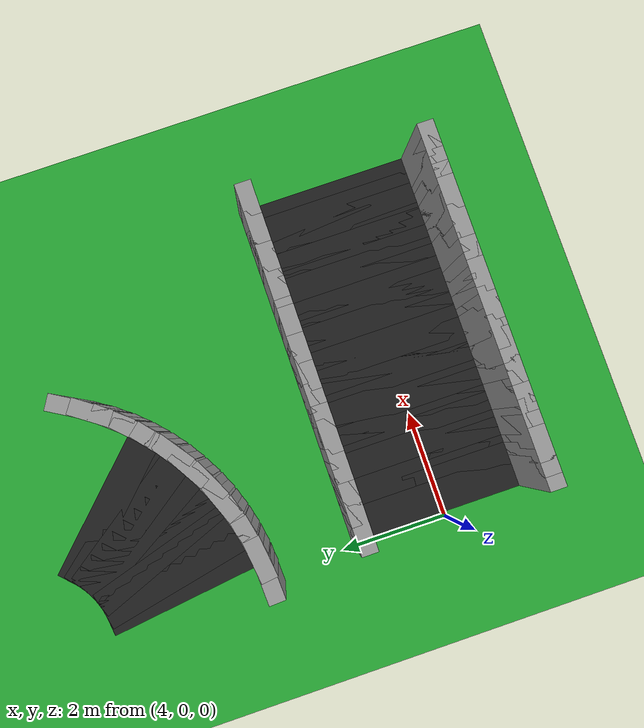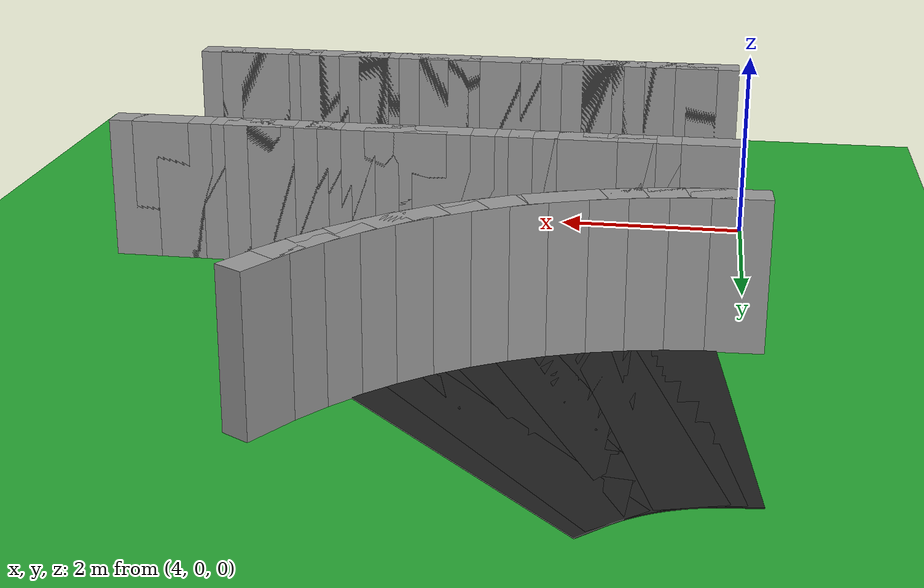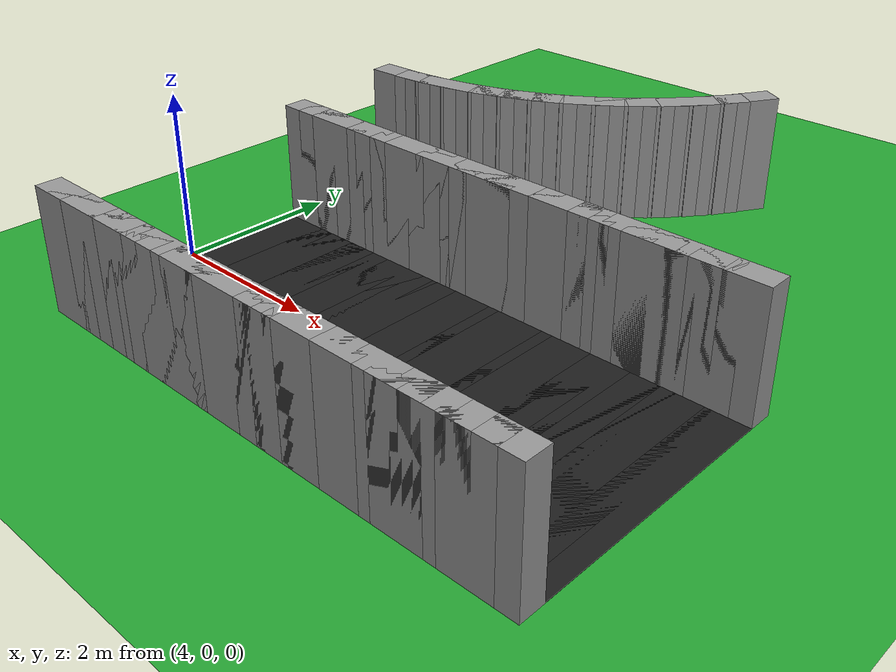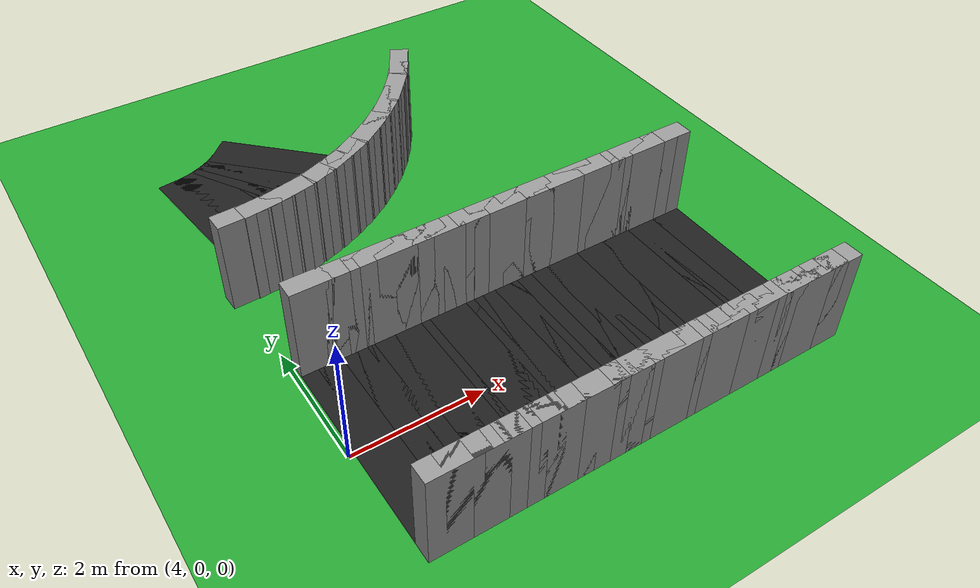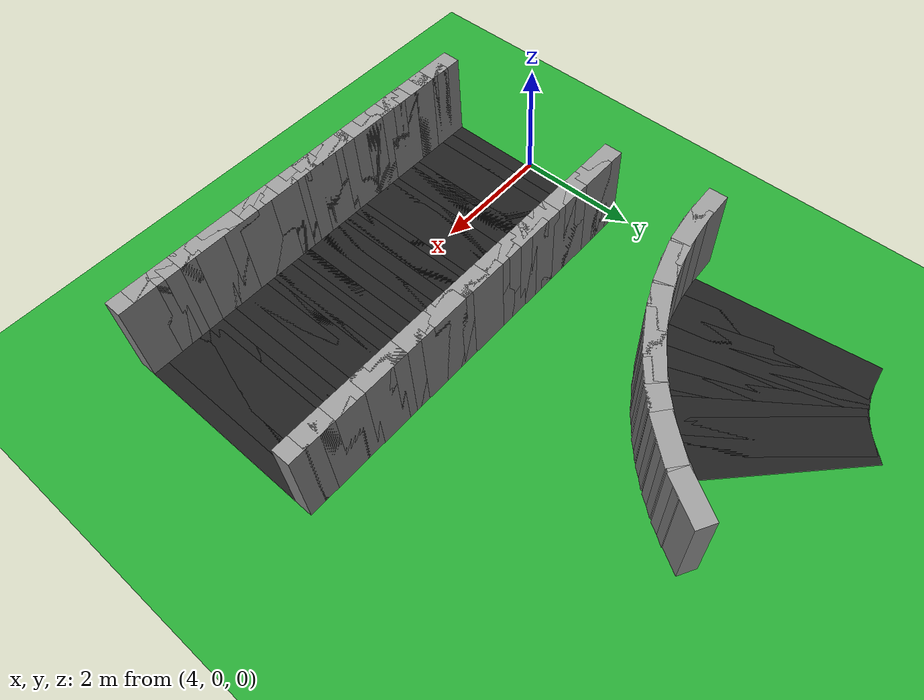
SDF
<sdf version="1.6">
 <world name="loop_extreme">
  <include><uri>model://sun</uri></include>
  <model name="ground_plane">
   <static>true</static>
   <link name="link">
    <collision name="collision">
     <surface><friction><ode><mu>100</mu><mu2>50</mu2></ode></friction></surface>
     <geometry><plane><normal>0 0 1</normal><size>120 120</size></plane></geometry>
    </collision>
    <visual name="visual">
     <geometry><plane><normal>0 0 1</normal><size>120 120</size></plane></geometry>
     <material>
      <script><uri>file://media/materials/scripts/gazebo.material</uri><name>Gazebo/Green</name></script>
     </material>
    </visual>
   </link>
  </model>
  <model name="asphalt_17">
   <static>true</static>
   <pose>4.375 0.000 0.005 0 0 0.00000</pose>
   <link name="link">
    <visual name="visual">
     <geometry><box><size>0.610 3.000 0.010</size></box></geometry>
     <material>
      <script><uri>file://media/materials/scripts/gazebo.material</uri><name>Gazebo/Black</name></script>
     </material>
    </visual>
   </link>
  </model>
  <model name="curbL_17">
   <static>true</static>
   <pose>4.375 1.650 0.750 0 0 0.00000</pose>
   <link name="link">
    <collision name="collision"><geometry><box><size>0.610 0.300 1.500</size></box></geometry></collision>
    <visual name="visual">
     <geometry><box><size>0.610 0.300 1.500</size></box></geometry>
     <material>
      <script><uri>file://media/materials/scripts/gazebo.material</uri><name>Gazebo/Grey</name></script>
     </material>
    </visual>
   </link>
  </model>
  <model name="curbR_17">
   <static>true</static>
   <pose>4.375 -1.650 0.750 0 0 0.00000</pose>
   <link name="link">
    <collision name="collision"><geometry><box><size>0.610 0.300 1.500</size></box></geometry></collision>
    <visual name="visual">
     <geometry><box><size>0.610 0.300 1.500</size></box></geometry>
     <material>
      <script><uri>file://media/materials/scripts/gazebo.material</uri><name>Gazebo/Grey</name></script>
     </material>
    </visual>
   </link>
  </model>
  <model name="asphalt_18">
   <static>true</static>
   <pose>4.625 0.000 0.005 0 0 0.00000</pose>
   <link name="link">
    <visual name="visual">
     <geometry><box><size>0.610 3.000 0.010</size></box></geometry>
     <material>
      <script><uri>file://media/materials/scripts/gazebo.material</uri><name>Gazebo/Black</name></script>
     </material>
    </visual>
   </link>
  </model>
  <model name="curbL_18">
   <static>true</static>
   <pose>4.625 1.650 0.750 0 0 0.00000</pose>
   <link name="link">
    <collision name="collision"><geometry><box><size>0.610 0.300 1.500</size></box></geometry></collision>
    <visual name="visual">
     <geometry><box><size>0.610 0.300 1.500</size></box></geometry>
     <material>
      <script><uri>file://media/materials/scripts/gazebo.material</uri><name>Gazebo/Grey</name></script>
     </material>
    </visual>
   </link>
  </model>
  <model name="curbR_18">
   <static>true</static>
   <pose>4.625 -1.650 0.750 0 0 0.00000</pose>
   <link name="link">
    <collision name="collision"><geometry><box><size>0.610 0.300 1.500</size></box></geometry></collision>
    <visual name="visual">
     <geometry><box><size>0.610 0.300 1.500</size></box></geometry>
     <material>
      <script><uri>file://media/materials/scripts/gazebo.material</uri><name>Gazebo/Grey</name></script>
     </material>
    </visual>
   </link>
  </model>
  <model name="asphalt_19">
   <static>true</static>
   <pose>4.875 0.000 0.005 0 0 0.00000</pose>
   <link name="link">
    <visual name="visual">
     <geometry><box><size>0.610 3.000 0.010</size></box></geometry>
     <material>
      <script><uri>file://media/materials/scripts/gazebo.material</uri><name>Gazebo/Black</name></script>
     </material>
    </visual>
   </link>
  </model>
  <model name="curbL_19">
   <static>true</static>
   <pose>4.875 1.650 0.750 0 0 0.00000</pose>
   <link name="link">
    <collision name="collision"><geometry><box><size>0.610 0.300 1.500</size></box></geometry></collision>
    <visual name="visual">
     <geometry><box><size>0.610 0.300 1.500</size></box></geometry>
     <material>
      <script><uri>file://media/materials/scripts/gazebo.material</uri><name>Gazebo/Grey</name></script>
     </material>
    </visual>
   </link>
  </model>
  <model name="curbR_19">
   <static>true</static>
   <pose>4.875 -1.650 0.750 0 0 0.00000</pose>
   <link name="link">
    <collision name="collision"><geometry><box><size>0.610 0.300 1.500</size></box></geometry></collision>
    <visual name="visual">
     <geometry><box><size>0.610 0.300 1.500</size></box></geometry>
     <material>
      <script><uri>file://media/materials/scripts/gazebo.material</uri><name>Gazebo/Grey</name></script>
     </material>
    </visual>
   </link>
  </model>
  <model name="asphalt_20">
   <static>true</static>
   <pose>5.125 0.000 0.005 0 0 0.00000</pose>
   <link name="link">
    <visual name="visual">
     <geometry><box><size>0.610 3.000 0.010</size></box></geometry>
     <material>
      <script><uri>file://media/materials/scripts/gazebo.material</uri><name>Gazebo/Black</name></script>
     </material>
    </visual>
   </link>
  </model>
  <model name="curbL_20">
   <static>true</static>
   <pose>5.125 1.650 0.750 0 0 0.00000</pose>
   <link name="link">
    <collision name="collision"><geometry><box><size>0.610 0.300 1.500</size></box></geometry></collision>
    <visual name="visual">
     <geometry><box><size>0.610 0.300 1.500</size></box></geometry>
     <material>
      <script><uri>file://media/materials/scripts/gazebo.material</uri><name>Gazebo/Grey</name></script>
     </material>
    </visual>
   </link>
  </model>
  <model name="curbR_20">
   <static>true</static>
   <pose>5.125 -1.650 0.750 0 0 0.00000</pose>
   <link name="link">
    <collision name="collision"><geometry><box><size>0.610 0.300 1.500</size></box></geometry></collision>
    <visual name="visual">
     <geometry><box><size>0.610 0.300 1.500</size></box></geometry>
     <material>
      <script><uri>file://media/materials/scripts/gazebo.material</uri><name>Gazebo/Grey</name></script>
     </material>
    </visual>
   </link>
  </model>
  <model name="asphalt_21">
   <static>true</static>
   <pose>5.375 0.000 0.005 0 0 0.00000</pose>
   <link name="link">
    <visual name="visual">
     <geometry><box><size>0.610 3.000 0.010</size></box></geometry>
     <material>
      <script><uri>file://media/materials/scripts/gazebo.material</uri><name>Gazebo/Black</name></script>
     </material>
    </visual>
   </link>
  </model>
  <model name="curbL_21">
   <static>true</static>
   <pose>5.375 1.650 0.750 0 0 0.00000</pose>
   <link name="link">
    <collision name="collision"><geometry><box><size>0.610 0.300 1.500</size></box></geometry></collision>
    <visual name="visual">
     <geometry><box><size>0.610 0.300 1.500</size></box></geometry>
     <material>
      <script><uri>file://media/materials/scripts/gazebo.material</uri><name>Gazebo/Grey</name></script>
     </material>
    </visual>
   </link>
  </model>
  <model name="curbR_21">
   <static>true</static>
   <pose>5.375 -1.650 0.750 0 0 0.00000</pose>
   <link name="link">
    <collision name="collision"><geometry><box><size>0.610 0.300 1.500</size></box></geometry></collision>
    <visual name="visual">
     <geometry><box><size>0.610 0.300 1.500</size></box></geometry>
     <material>
      <script><uri>file://media/materials/scripts/gazebo.material</uri><name>Gazebo/Grey</name></script>
     </material>
    </visual>
   </link>
  </model>
  <model name="asphalt_22">
   <static>true</static>
   <pose>5.625 0.000 0.005 0 0 0.00000</pose>
   <link name="link">
    <visual name="visual">
     <geometry><box><size>0.610 3.000 0.010</size></box></geometry>
     <material>
      <script><uri>file://media/materials/scripts/gazebo.material</uri><name>Gazebo/Black</name></script>
     </material>
    </visual>
   </link>
  </model>
  <model name="curbL_22">
   <static>true</static>
   <pose>5.625 1.650 0.750 0 0 0.00000</pose>
   <link name="link">
    <collision name="collision"><geometry><box><size>0.610 0.300 1.500</size></box></geometry></collision>
    <visual name="visual">
     <geometry><box><size>0.610 0.300 1.500</size></box></geometry>
     <material>
      <script><uri>file://media/materials/scripts/gazebo.material</uri><name>Gazebo/Grey</name></script>
     </material>
    </visual>
   </link>
  </model>
  <model name="curbR_22">
   <static>true</static>
   <pose>5.625 -1.650 0.750 0 0 0.00000</pose>
   <link name="link">
    <collision name="collision"><geometry><box><size>0.610 0.300 1.500</size></box></geometry></collision>
    <visual name="visual">
     <geometry><box><size>0.610 0.300 1.500</size></box></geometry>
     <material>
      <script><uri>file://media/materials/scripts/gazebo.material</uri><name>Gazebo/Grey</name></script>
     </material>
    </visual>
   </link>
  </model>
  <model name="asphalt_23">
   <static>true</static>
   <pose>5.875 0.000 0.005 0 0 0.00000</pose>
   <link name="link">
    <visual name="visual">
     <geometry><box><size>0.610 3.000 0.010</size></box></geometry>
     <material>
      <script><uri>file://media/materials/scripts/gazebo.material</uri><name>Gazebo/Black</name></script>
     </material>
    </visual>
   </link>
  </model>
  <model name="curbL_23">
   <static>true</static>
   <pose>5.875 1.650 0.750 0 0 0.00000</pose>
   <link name="link">
    <collision name="collision"><geometry><box><size>0.610 0.300 1.500</size></box></geometry></collision>
    <visual name="visual">
     <geometry><box><size>0.610 0.300 1.500</size></box></geometry>
     <material>
      <script><uri>file://media/materials/scripts/gazebo.material</uri><name>Gazebo/Grey</name></script>
     </material>
    </visual>
   </link>
  </model>
  <model name="curbR_23">
   <static>true</static>
   <pose>5.875 -1.650 0.750 0 0 0.00000</pose>
   <link name="link">
    <collision name="collision"><geometry><box><size>0.610 0.300 1.500</size></box></geometry></collision>
    <visual name="visual">
     <geometry><box><size>0.610 0.300 1.500</size></box></geometry>
     <material>
      <script><uri>file://media/materials/scripts/gazebo.material</uri><name>Gazebo/Grey</name></script>
     </material>
    </visual>
   </link>
  </model>
  <model name="asphalt_24">
   <static>true</static>
   <pose>6.125 0.000 0.005 0 0 0.00000</pose>
   <link name="link">
    <visual name="visual">
     <geometry><box><size>0.610 3.000 0.010</size></box></geometry>
     <material>
      <script><uri>file://media/materials/scripts/gazebo.material</uri><name>Gazebo/Black</name></script>
     </material>
    </visual>
   </link>
  </model>
  <model name="curbL_24">
   <static>true</static>
   <pose>6.125 1.650 0.750 0 0 0.00000</pose>
   <link name="link">
    <collision name="collision"><geometry><box><size>0.610 0.300 1.500</size></box></geometry></collision>
    <visual name="visual">
     <geometry><box><size>0.610 0.300 1.500</size></box></geometry>
     <material>
      <script><uri>file://media/materials/scripts/gazebo.material</uri><name>Gazebo/Grey</name></script>
     </material>
    </visual>
   </link>
  </model>
  <model name="curbR_24">
   <static>true</static>
   <pose>6.125 -1.650 0.750 0 0 0.00000</pose>
   <link name="link">
    <collision name="collision"><geometry><box><size>0.610 0.300 1.500</size></box></geometry></collision>
    <visual name="visual">
     <geometry><box><size>0.610 0.300 1.500</size></box></geometry>
     <material>
      <script><uri>file://media/materials/scripts/gazebo.material</uri><name>Gazebo/Grey</name></script>
     </material>
    </visual>
   </link>
  </model>
  <model name="asphalt_25">
   <static>true</static>
   <pose>6.375 0.000 0.005 0 0 0.00000</pose>
   <link name="link">
    <visual name="visual">
     <geometry><box><size>0.610 3.000 0.010</size></box></geometry>
     <material>
      <script><uri>file://media/materials/scripts/gazebo.material</uri><name>Gazebo/Black</name></script>
     </material>
    </visual>
   </link>
  </model>
  <model name="curbL_25">
   <static>true</static>
   <pose>6.375 1.650 0.750 0 0 0.00000</pose>
   <link name="link">
    <collision name="collision"><geometry><box><size>0.610 0.300 1.500</size></box></geometry></collision>
    <visual name="visual">
     <geometry><box><size>0.610 0.300 1.500</size></box></geometry>
     <material>
      <script><uri>file://media/materials/scripts/gazebo.material</uri><name>Gazebo/Grey</name></script>
     </material>
    </visual>
   </link>
  </model>
  <model name="curbR_25">
   <static>true</static>
   <pose>6.375 -1.650 0.750 0 0 0.00000</pose>
   <link name="link">
    <collision name="collision"><geometry><box><size>0.610 0.300 1.500</size></box></geometry></collision>
    <visual name="visual">
     <geometry><box><size>0.610 0.300 1.500</size></box></geometry>
     <material>
      <script><uri>file://media/materials/scripts/gazebo.material</uri><name>Gazebo/Grey</name></script>
     </material>
    </visual>
   </link>
  </model>
  <model name="asphalt_26">
   <static>true</static>
   <pose>6.625 0.000 0.005 0 0 0.00000</pose>
   <link name="link">
    <visual name="visual">
     <geometry><box><size>0.610 3.000 0.010</size></box></geometry>
     <material>
      <script><uri>file://media/materials/scripts/gazebo.material</uri><name>Gazebo/Black</name></script>
     </material>
    </visual>
   </link>
  </model>
  <model name="curbL_26">
   <static>true</static>
   <pose>6.625 1.650 0.750 0 0 0.00000</pose>
   <link name="link">
    <collision name="collision"><geometry><box><size>0.610 0.300 1.500</size></box></geometry></collision>
    <visual name="visual">
     <geometry><box><size>0.610 0.300 1.500</size></box></geometry>
     <material>
      <script><uri>file://media/materials/scripts/gazebo.material</uri><name>Gazebo/Grey</name></script>
     </material>
    </visual>
   </link>
  </model>
  <model name="curbR_26">
   <static>true</static>
   <pose>6.625 -1.650 0.750 0 0 0.00000</pose>
   <link name="link">
    <collision name="collision"><geometry><box><size>0.610 0.300 1.500</size></box></geometry></collision>
    <visual name="visual">
     <geometry><box><size>0.610 0.300 1.500</size></box></geometry>
     <material>
      <script><uri>file://media/materials/scripts/gazebo.material</uri><name>Gazebo/Grey</name></script>
     </material>
    </visual>
   </link>
  </model>
  <model name="asphalt_27">
   <static>true</static>
   <pose>6.875 0.000 0.005 0 0 0.00000</pose>
   <link name="link">
    <visual name="visual">
     <geometry><box><size>0.610 3.000 0.010</size></box></geometry>
     <material>
      <script><uri>file://media/materials/scripts/gazebo.material</uri><name>Gazebo/Black</name></script>
     </material>
    </visual>
   </link>
  </model>
  <model name="curbL_27">
   <static>true</static>
   <pose>6.875 1.650 0.750 0 0 0.00000</pose>
   <link name="link">
    <collision name="collision"><geometry><box><size>0.610 0.300 1.500</size></box></geometry></collision>
    <visual name="visual">
     <geometry><box><size>0.610 0.300 1.500</size></box></geometry>
     <material>
      <script><uri>file://media/materials/scripts/gazebo.material</uri><name>Gazebo/Grey</name></script>
     </material>
    </visual>
   </link>
  </model>
  <model name="curbR_27">
   <static>true</static>
   <pose>6.875 -1.650 0.750 0 0 0.00000</pose>
   <link name="link">
    <collision name="collision"><geometry><box><size>0.610 0.300 1.500</size></box></geometry></collision>
    <visual name="visual">
     <geometry><box><size>0.610 0.300 1.500</size></box></geometry>
     <material>
      <script><uri>file://media/materials/scripts/gazebo.material</uri><name>Gazebo/Grey</name></script>
     </material>
    </visual>
   </link>
  </model>
  <model name="asphalt_28">
   <static>true</static>
   <pose>7.125 0.000 0.005 0 0 0.00000</pose>
   <link name="link">
    <visual name="visual">
     <geometry><box><size>0.610 3.000 0.010</size></box></geometry>
     <material>
      <script><uri>file://media/materials/scripts/gazebo.material</uri><name>Gazebo/Black</name></script>
     </material>
    </visual>
   </link>
  </model>
  <model name="curbL_28">
   <static>true</static>
   <pose>7.125 1.650 0.750 0 0 0.00000</pose>
   <link name="link">
    <collision name="collision"><geometry><box><size>0.610 0.300 1.500</size></box></geometry></collision>
    <visual name="visual">
     <geometry><box><size>0.610 0.300 1.500</size></box></geometry>
     <material>
      <script><uri>file://media/materials/scripts/gazebo.material</uri><name>Gazebo/Grey</name></script>
     </material>
    </visual>
   </link>
  </model>
  <model name="curbR_28">
   <static>true</static>
   <pose>7.125 -1.650 0.750 0 0 0.00000</pose>
   <link name="link">
    <collision name="collision"><geometry><box><size>0.610 0.300 1.500</size></box></geometry></collision>
    <visual name="visual">
     <geometry><box><size>0.610 0.300 1.500</size></box></geometry>
     <material>
      <script><uri>file://media/materials/scripts/gazebo.material</uri><name>Gazebo/Grey</name></script>
     </material>
    </visual>
   </link>
  </model>
  <model name="asphalt_29">
   <static>true</static>
   <pose>7.375 0.000 0.005 0 0 0.00000</pose>
   <link name="link">
    <visual name="visual">
     <geometry><box><size>0.610 3.000 0.010</size></box></geometry>
     <material>
      <script><uri>file://media/materials/scripts/gazebo.material</uri><name>Gazebo/Black</name></script>
     </material>
    </visual>
   </link>
  </model>
  <model name="curbL_29">
   <static>true</static>
   <pose>7.375 1.650 0.750 0 0 0.00000</pose>
   <link name="link">
    <collision name="collision"><geometry><box><size>0.610 0.300 1.500</size></box></geometry></collision>
    <visual name="visual">
     <geometry><box><size>0.610 0.300 1.500</size></box></geometry>
     <material>
      <script><uri>file://media/materials/scripts/gazebo.material</uri><name>Gazebo/Grey</name></script>
     </material>
    </visual>
   </link>
  </model>
  <model name="curbR_29">
   <static>true</static>
   <pose>7.375 -1.650 0.750 0 0 0.00000</pose>
   <link name="link">
    <collision name="collision"><geometry><box><size>0.610 0.300 1.500</size></box></geometry></collision>
    <visual name="visual">
     <geometry><box><size>0.610 0.300 1.500</size></box></geometry>
     <material>
      <script><uri>file://media/materials/scripts/gazebo.material</uri><name>Gazebo/Grey</name></script>
     </material>
    </visual>
   </link>
  </model>
  <model name="asphalt_30">
   <static>true</static>
   <pose>7.625 0.000 0.005 0 0 0.00000</pose>
   <link name="link">
    <visual name="visual">
     <geometry><box><size>0.610 3.000 0.010</size></box></geometry>
     <material>
      <script><uri>file://media/materials/scripts/gazebo.material</uri><name>Gazebo/Black</name></script>
     </material>
    </visual>
   </link>
  </model>
  <model name="curbL_30">
   <static>true</static>
   <pose>7.625 1.650 0.750 0 0 0.00000</pose>
   <link name="link">
    <collision name="collision"><geometry><box><size>0.610 0.300 1.500</size></box></geometry></collision>
    <visual name="visual">
     <geometry><box><size>0.610 0.300 1.500</size></box></geometry>
     <material>
      <script><uri>file://media/materials/scripts/gazebo.material</uri><name>Gazebo/Grey</name></script>
     </material>
    </visual>
   </link>
  </model>
  <model name="curbR_30">
   <static>true</static>
   <pose>7.625 -1.650 0.750 0 0 0.00000</pose>
   <link name="link">
    <collision name="collision"><geometry><box><size>0.610 0.300 1.500</size></box></geometry></collision>
    <visual name="visual">
     <geometry><box><size>0.610 0.300 1.500</size></box></geometry>
     <material>
      <script><uri>file://media/materials/scripts/gazebo.material</uri><name>Gazebo/Grey</name></script>
     </material>
    </visual>
   </link>
  </model>
  <model name="asphalt_31">
   <static>true</static>
   <pose>7.875 0.000 0.005 0 0 0.00000</pose>
   <link name="link">
    <visual name="visual">
     <geometry><box><size>0.610 3.000 0.010</size></box></geometry>
     <material>
      <script><uri>file://media/materials/scripts/gazebo.material</uri><name>Gazebo/Black</name></script>
     </material>
    </visual>
   </link>
  </model>
  <model name="curbL_31">
   <static>true</static>
   <pose>7.875 1.650 0.750 0 0 0.00000</pose>
   <link name="link">
    <collision name="collision"><geometry><box><size>0.610 0.300 1.500</size></box></geometry></collision>
    <visual name="visual">
     <geometry><box><size>0.610 0.300 1.500</size></box></geometry>
     <material>
      <script><uri>file://media/materials/scripts/gazebo.material</uri><name>Gazebo/Grey</name></script>
     </material>
    </visual>
   </link>
  </model>
  <model name="curbR_31">
   <static>true</static>
   <pose>7.875 -1.650 0.750 0 0 0.00000</pose>
   <link name="link">
    <collision name="collision"><geometry><box><size>0.610 0.300 1.500</size></box></geometry></collision>
    <visual name="visual">
     <geometry><box><size>0.610 0.300 1.500</size></box></geometry>
     <material>
      <script><uri>file://media/materials/scripts/gazebo.material</uri><name>Gazebo/Grey</name></script>
     </material>
    </visual>
   </link>
  </model>
  <model name="asphalt_32">
   <static>true</static>
   <pose>8.125 0.000 0.005 0 0 0.00000</pose>
   <link name="link">
    <visual name="visual">
     <geometry><box><size>0.610 3.000 0.010</size></box></geometry>
     <material>
      <script><uri>file://media/materials/scripts/gazebo.material</uri><name>Gazebo/Black</name></script>
     </material>
    </visual>
   </link>
  </model>
  <model name="curbL_32">
   <static>true</static>
   <pose>8.125 1.650 0.750 0 0 0.00000</pose>
   <link name="link">
    <collision name="collision"><geometry><box><size>0.610 0.300 1.500</size></box></geometry></collision>
    <visual name="visual">
     <geometry><box><size>0.610 0.300 1.500</size></box></geometry>
     <material>
      <script><uri>file://media/materials/scripts/gazebo.material</uri><name>Gazebo/Grey</name></script>
     </material>
    </visual>
   </link>
  </model>
  <model name="curbR_32">
   <static>true</static>
   <pose>8.125 -1.650 0.750 0 0 0.00000</pose>
   <link name="link">
    <collision name="collision"><geometry><box><size>0.610 0.300 1.500</size></box></geometry></collision>
    <visual name="visual">
     <geometry><box><size>0.610 0.300 1.500</size></box></geometry>
     <material>
      <script><uri>file://media/materials/scripts/gazebo.material</uri><name>Gazebo/Grey</name></script>
     </material>
    </visual>
   </link>
  </model>
  <model name="asphalt_33">
   <static>true</static>
   <pose>8.375 0.000 0.005 0 0 0.00000</pose>
   <link name="link">
    <visual name="visual">
     <geometry><box><size>0.610 3.000 0.010</size></box></geometry>
     <material>
      <script><uri>file://media/materials/scripts/gazebo.material</uri><name>Gazebo/Black</name></script>
     </material>
    </visual>
   </link>
  </model>
  <model name="curbL_33">
   <static>true</static>
   <pose>8.375 1.650 0.750 0 0 0.00000</pose>
   <link name="link">
    <collision name="collision"><geometry><box><size>0.610 0.300 1.500</size></box></geometry></collision>
    <visual name="visual">
     <geometry><box><size>0.610 0.300 1.500</size></box></geometry>
     <material>
      <script><uri>file://media/materials/scripts/gazebo.material</uri><name>Gazebo/Grey</name></script>
     </material>
    </visual>
   </link>
  </model>
  <model name="curbR_33">
   <static>true</static>
   <pose>8.375 -1.650 0.750 0 0 0.00000</pose>
   <link name="link">
    <collision name="collision"><geometry><box><size>0.610 0.300 1.500</size></box></geometry></collision>
    <visual name="visual">
     <geometry><box><size>0.610 0.300 1.500</size></box></geometry>
     <material>
      <script><uri>file://media/materials/scripts/gazebo.material</uri><name>Gazebo/Grey</name></script>
     </material>
    </visual>
   </link>
  </model>
  <model name="asphalt_34">
   <static>true</static>
   <pose>8.625 0.000 0.005 0 0 0.00000</pose>
   <link name="link">
    <visual name="visual">
     <geometry><box><size>0.610 3.000 0.010</size></box></geometry>
     <material>
      <script><uri>file://media/materials/scripts/gazebo.material</uri><name>Gazebo/Black</name></script>
     </material>
    </visual>
   </link>
  </model>
  <model name="curbL_34">
   <static>true</static>
   <pose>8.625 1.650 0.750 0 0 0.00000</pose>
   <link name="link">
    <collision name="collision"><geometry><box><size>0.610 0.300 1.500</size></box></geometry></collision>
    <visual name="visual">
     <geometry><box><size>0.610 0.300 1.500</size></box></geometry>
     <material>
      <script><uri>file://media/materials/scripts/gazebo.material</uri><name>Gazebo/Grey</name></script>
     </material>
    </visual>
   </link>
  </model>
  <model name="curbR_34">
   <static>true</static>
   <pose>8.625 -1.650 0.750 0 0 0.00000</pose>
   <link name="link">
    <collision name="collision"><geometry><box><size>0.610 0.300 1.500</size></box></geometry></collision>
    <visual name="visual">
     <geometry><box><size>0.610 0.300 1.500</size></box></geometry>
     <material>
      <script><uri>file://media/materials/scripts/gazebo.material</uri><name>Gazebo/Grey</name></script>
     </material>
    </visual>
   </link>
  </model>
  <model name="asphalt_35">
   <static>true</static>
   <pose>8.875 0.000 0.005 0 0 0.00000</pose>
   <link name="link">
    <visual name="visual">
     <geometry><box><size>0.610 3.000 0.010</size></box></geometry>
     <material>
      <script><uri>file://media/materials/scripts/gazebo.material</uri><name>Gazebo/Black</name></script>
     </material>
    </visual>
   </link>
  </model>
  <model name="curbL_35">
   <static>true</static>
   <pose>8.875 1.650 0.750 0 0 0.00000</pose>
   <link name="link">
    <collision name="collision"><geometry><box><size>0.610 0.300 1.500</size></box></geometry></collision>
    <visual name="visual">
     <geometry><box><size>0.610 0.300 1.500</size></box></geometry>
     <material>
      <script><uri>file://media/materials/scripts/gazebo.material</uri><name>Gazebo/Grey</name></script>
     </material>
    </visual>
   </link>
  </model>
  <model name="curbR_35">
   <static>true</static>
   <pose>8.875 -1.650 0.750 0 0 0.00000</pose>
   <link name="link">
    <collision name="collision"><geometry><box><size>0.610 0.300 1.500</size></box></geometry></collision>
    <visual name="visual">
     <geometry><box><size>0.610 0.300 1.500</size></box></geometry>
     <material>
      <script><uri>file://media/materials/scripts/gazebo.material</uri><name>Gazebo/Grey</name></script>
     </material>
    </visual>
   </link>
  </model>
  <model name="asphalt_36">
   <static>true</static>
   <pose>9.125 0.000 0.005 0 0 0.00000</pose>
   <link name="link">
    <visual name="visual">
     <geometry><box><size>0.610 3.000 0.010</size></box></geometry>
     <material>
      <script><uri>file://media/materials/scripts/gazebo.material</uri><name>Gazebo/Black</name></script>
     </material>
    </visual>
   </link>
  </model>
  <model name="curbL_36">
   <static>true</static>
   <pose>9.125 1.650 0.750 0 0 0.00000</pose>
   <link name="link">
    <collision name="collision"><geometry><box><size>0.610 0.300 1.500</size></box></geometry></collision>
    <visual name="visual">
     <geometry><box><size>0.610 0.300 1.500</size></box></geometry>
     <material>
      <script><uri>file://media/materials/scripts/gazebo.material</uri><name>Gazebo/Grey</name></script>
     </material>
    </visual>
   </link>
  </model>
  <model name="curbR_36">
   <static>true</static>
   <pose>9.125 -1.650 0.750 0 0 0.00000</pose>
   <link name="link">
    <collision name="collision"><geometry><box><size>0.610 0.300 1.500</size></box></geometry></collision>
    <visual name="visual">
     <geometry><box><size>0.610 0.300 1.500</size></box></geometry>
     <material>
      <script><uri>file://media/materials/scripts/gazebo.material</uri><name>Gazebo/Grey</name></script>
     </material>
    </visual>
   </link>
  </model>
  <model name="asphalt_37">
   <static>true</static>
   <pose>9.375 0.000 0.005 0 0 0.00000</pose>
   <link name="link">
    <visual name="visual">
     <geometry><box><size>0.610 3.000 0.010</size></box></geometry>
     <material>
      <script><uri>file://media/materials/scripts/gazebo.material</uri><name>Gazebo/Black</name></script>
     </material>
    </visual>
   </link>
  </model>
  <model name="curbL_37">
   <static>true</static>
   <pose>9.375 1.650 0.750 0 0 0.00000</pose>
   <link name="link">
    <collision name="collision"><geometry><box><size>0.610 0.300 1.500</size></box></geometry></collision>
    <visual name="visual">
     <geometry><box><size>0.610 0.300 1.500</size></box></geometry>
     <material>
      <script><uri>file://media/materials/scripts/gazebo.material</uri><name>Gazebo/Grey</name></script>
     </material>
    </visual>
   </link>
  </model>
  <model name="curbR_37">
   <static>true</static>
   <pose>9.375 -1.650 0.750 0 0 0.00000</pose>
   <link name="link">
    <collision name="collision"><geometry><box><size>0.610 0.300 1.500</size></box></geometry></collision>
    <visual name="visual">
     <geometry><box><size>0.610 0.300 1.500</size></box></geometry>
     <material>
      <script><uri>file://media/materials/scripts/gazebo.material</uri><name>Gazebo/Grey</name></script>
     </material>
    </visual>
   </link>
  </model>
  <model name="asphalt_38">
   <static>true</static>
   <pose>9.625 0.000 0.005 0 0 0.00000</pose>
   <link name="link">
    <visual name="visual">
     <geometry><box><size>0.610 3.000 0.010</size></box></geometry>
     <material>
      <script><uri>file://media/materials/scripts/gazebo.material</uri><name>Gazebo/Black</name></script>
     </material>
    </visual>
   </link>
  </model>
  <model name="curbL_38">
   <static>true</static>
   <pose>9.625 1.650 0.750 0 0 0.00000</pose>
   <link name="link">
    <collision name="collision"><geometry><box><size>0.610 0.300 1.500</size></box></geometry></collision>
    <visual name="visual">
     <geometry><box><size>0.610 0.300 1.500</size></box></geometry>
     <material>
      <script><uri>file://media/materials/scripts/gazebo.material</uri><name>Gazebo/Grey</name></script>
     </material>
    </visual>
   </link>
  </model>
  <model name="curbR_38">
   <static>true</static>
   <pose>9.625 -1.650 0.750 0 0 0.00000</pose>
   <link name="link">
    <collision name="collision"><geometry><box><size>0.610 0.300 1.500</size></box></geometry></collision>
    <visual name="visual">
     <geometry><box><size>0.610 0.300 1.500</size></box></geometry>
     <material>
      <script><uri>file://media/materials/scripts/gazebo.material</uri><name>Gazebo/Grey</name></script>
     </material>
    </visual>
   </link>
  </model>
  <model name="asphalt_39">
   <static>true</static>
   <pose>9.875 0.000 0.005 0 0 0.00000</pose>
   <link name="link">
    <visual name="visual">
     <geometry><box><size>0.610 3.000 0.010</size></box></geometry>
     <material>
      <script><uri>file://media/materials/scripts/gazebo.material</uri><name>Gazebo/Black</name></script>
     </material>
    </visual>
   </link>
  </model>
  <model name="curbL_39">
   <static>true</static>
   <pose>9.875 1.650 0.750 0 0 0.00000</pose>
   <link name="link">
    <collision name="collision"><geometry><box><size>0.610 0.300 1.500</size></box></geometry></collision>
    <visual name="visual">
     <geometry><box><size>0.610 0.300 1.500</size></box></geometry>
     <material>
      <script><uri>file://media/materials/scripts/gazebo.material</uri><name>Gazebo/Grey</name></script>
     </material>
    </visual>
   </link>
  </model>
  <model name="curbR_39">
   <static>true</static>
   <pose>9.875 -1.650 0.750 0 0 0.00000</pose>
   <link name="link">
    <collision name="collision"><geometry><box><size>0.610 0.300 1.500</size></box></geometry></collision>
    <visual name="visual">
     <geometry><box><size>0.610 0.300 1.500</size></box></geometry>
     <material>
      <script><uri>file://media/materials/scripts/gazebo.material</uri><name>Gazebo/Grey</name></script>
     </material>
    </visual>
   </link>
  </model>
  <model name="asphalt_40">
   <static>true</static>
   <pose>10.125 0.000 0.005 0 0 0.00000</pose>
   <link name="link">
    <visual name="visual">
     <geometry><box><size>0.610 3.000 0.010</size></box></geometry>
     <material>
      <script><uri>file://media/materials/scripts/gazebo.material</uri><name>Gazebo/Black</name></script>
     </material>
    </visual>
   </link>
  </model>
  <model name="curbL_40">
   <static>true</static>
   <pose>10.125 1.650 0.750 0 0 0.00000</pose>
   <link name="link">
    <collision name="collision"><geometry><box><size>0.610 0.300 1.500</size></box></geometry></collision>
    <visual name="visual">
     <geometry><box><size>0.610 0.300 1.500</size></box></geometry>
     <material>
      <script><uri>file://media/materials/scripts/gazebo.material</uri><name>Gazebo/Grey</name></script>
     </material>
    </visual>
   </link>
  </model>
  <model name="curbR_40">
   <static>true</static>
   <pose>10.125 -1.650 0.750 0 0 0.00000</pose>
   <link name="link">
    <collision name="collision"><geometry><box><size>0.610 0.300 1.500</size></box></geometry></collision>
    <visual name="visual">
     <geometry><box><size>0.610 0.300 1.500</size></box></geometry>
     <material>
      <script><uri>file://media/materials/scripts/gazebo.material</uri><name>Gazebo/Grey</name></script>
     </material>
    </visual>
   </link>
  </model>
  <model name="asphalt_41">
   <static>true</static>
   <pose>10.375 0.000 0.005 0 0 0.00000</pose>
   <link name="link">
    <visual name="visual">
     <geometry><box><size>0.610 3.000 0.010</size></box></geometry>
     <material>
      <script><uri>file://media/materials/scripts/gazebo.material</uri><name>Gazebo/Black</name></script>
     </material>
    </visual>
   </link>
  </model>
  <model name="curbL_41">
   <static>true</static>
   <pose>10.375 1.650 0.750 0 0 0.00000</pose>
   <link name="link">
    <collision name="collision"><geometry><box><size>0.610 0.300 1.500</size></box></geometry></collision>
    <visual name="visual">
     <geometry><box><size>0.610 0.300 1.500</size></box></geometry>
     <material>
      <script><uri>file://media/materials/scripts/gazebo.material</uri><name>Gazebo/Grey</name></script>
     </material>
    </visual>
   </link>
  </model>
  <model name="curbR_41">
   <static>true</static>
   <pose>10.375 -1.650 0.750 0 0 0.00000</pose>
   <link name="link">
    <collision name="collision"><geometry><box><size>0.610 0.300 1.500</size></box></geometry></collision>
    <visual name="visual">
     <geometry><box><size>0.610 0.300 1.500</size></box></geometry>
     <material>
      <script><uri>file://media/materials/scripts/gazebo.material</uri><name>Gazebo/Grey</name></script>
     </material>
    </visual>
   </link>
  </model>
  <model name="curbL_230">
   <static>true</static>
   <pose>7.992 5.624 0.750 0 0 -2.10817</pose>
   <link name="link">
    <collision name="collision"><geometry><box><size>0.744 0.300 1.500</size></box></geometry></collision>
    <visual name="visual">
     <geometry><box><size>0.744 0.300 1.500</size></box></geometry>
     <material>
      <script><uri>file://media/materials/scripts/gazebo.material</uri><name>Gazebo/Grey</name></script>
     </material>
    </visual>
   </link>
  </model>
  <model name="curbL_231">
   <static>true</static>
   <pose>7.782 5.303 0.750 0 0 -2.19085</pose>
   <link name="link">
    <collision name="collision"><geometry><box><size>0.744 0.300 1.500</size></box></geometry></collision>
    <visual name="visual">
     <geometry><box><size>0.744 0.300 1.500</size></box></geometry>
     <material>
      <script><uri>file://media/materials/scripts/gazebo.material</uri><name>Gazebo/Grey</name></script>
     </material>
    </visual>
   </link>
  </model>
  <model name="curbL_232">
   <static>true</static>
   <pose>7.546 5.000 0.750 0 0 -2.27352</pose>
   <link name="link">
    <collision name="collision"><geometry><box><size>0.744 0.300 1.500</size></box></geometry></collision>
    <visual name="visual">
     <geometry><box><size>0.744 0.300 1.500</size></box></geometry>
     <material>
      <script><uri>file://media/materials/scripts/gazebo.material</uri><name>Gazebo/Grey</name></script>
     </material>
    </visual>
   </link>
  </model>
  <model name="asphalt_233">
   <static>true</static>
   <pose>6.120 5.883 0.005 0 0 -2.35619</pose>
   <link name="link">
    <visual name="visual">
     <geometry><box><size>0.608 3.000 0.010</size></box></geometry>
     <material>
      <script><uri>file://media/materials/scripts/gazebo.material</uri><name>Gazebo/Black</name></script>
     </material>
    </visual>
   </link>
  </model>
  <model name="curbL_233">
   <static>true</static>
   <pose>7.286 4.717 0.750 0 0 -2.35619</pose>
   <link name="link">
    <collision name="collision"><geometry><box><size>0.744 0.300 1.500</size></box></geometry></collision>
    <visual name="visual">
     <geometry><box><size>0.744 0.300 1.500</size></box></geometry>
     <material>
      <script><uri>file://media/materials/scripts/gazebo.material</uri><name>Gazebo/Grey</name></script>
     </material>
    </visual>
   </link>
  </model>
  <model name="asphalt_234">
   <static>true</static>
   <pose>5.938 5.715 0.005 0 0 -2.43887</pose>
   <link name="link">
    <visual name="visual">
     <geometry><box><size>0.608 3.000 0.010</size></box></geometry>
     <material>
      <script><uri>file://media/materials/scripts/gazebo.material</uri><name>Gazebo/Black</name></script>
     </material>
    </visual>
   </link>
  </model>
  <model name="curbL_234">
   <static>true</static>
   <pose>7.003 4.457 0.750 0 0 -2.43887</pose>
   <link name="link">
    <collision name="collision"><geometry><box><size>0.744 0.300 1.500</size></box></geometry></collision>
    <visual name="visual">
     <geometry><box><size>0.744 0.300 1.500</size></box></geometry>
     <material>
      <script><uri>file://media/materials/scripts/gazebo.material</uri><name>Gazebo/Grey</name></script>
     </material>
    </visual>
   </link>
  </model>
  <model name="asphalt_235">
   <static>true</static>
   <pose>5.742 5.563 0.005 0 0 -2.52154</pose>
   <link name="link">
    <visual name="visual">
     <geometry><box><size>0.608 3.000 0.010</size></box></geometry>
     <material>
      <script><uri>file://media/materials/scripts/gazebo.material</uri><name>Gazebo/Black</name></script>
     </material>
    </visual>
   </link>
  </model>
  <model name="curbL_235">
   <static>true</static>
   <pose>6.700 4.221 0.750 0 0 -2.52154</pose>
   <link name="link">
    <collision name="collision"><geometry><box><size>0.744 0.300 1.500</size></box></geometry></collision>
    <visual name="visual">
     <geometry><box><size>0.744 0.300 1.500</size></box></geometry>
     <material>
      <script><uri>file://media/materials/scripts/gazebo.material</uri><name>Gazebo/Grey</name></script>
     </material>
    </visual>
   </link>
  </model>
  <model name="asphalt_236">
   <static>true</static>
   <pose>5.535 5.427 0.005 0 0 -2.60421</pose>
   <link name="link">
    <visual name="visual">
     <geometry><box><size>0.608 3.000 0.010</size></box></geometry>
     <material>
      <script><uri>file://media/materials/scripts/gazebo.material</uri><name>Gazebo/Black</name></script>
     </material>
    </visual>
   </link>
  </model>
  <model name="curbL_236">
   <static>true</static>
   <pose>6.379 4.011 0.750 0 0 -2.60421</pose>
   <link name="link">
    <collision name="collision"><geometry><box><size>0.744 0.300 1.500</size></box></geometry></collision>
    <visual name="visual">
     <geometry><box><size>0.744 0.300 1.500</size></box></geometry>
     <material>
      <script><uri>file://media/materials/scripts/gazebo.material</uri><name>Gazebo/Grey</name></script>
     </material>
    </visual>
   </link>
  </model>
  <model name="asphalt_237">
   <static>true</static>
   <pose>5.317 5.309 0.005 0 0 -2.68689</pose>
   <link name="link">
    <visual name="visual">
     <geometry><box><size>0.608 3.000 0.010</size></box></geometry>
     <material>
      <script><uri>file://media/materials/scripts/gazebo.material</uri><name>Gazebo/Black</name></script>
     </material>
    </visual>
   </link>
  </model>
  <model name="curbL_237">
   <static>true</static>
   <pose>6.041 3.828 0.750 0 0 -2.68689</pose>
   <link name="link">
    <collision name="collision"><geometry><box><size>0.744 0.300 1.500</size></box></geometry></collision>
    <visual name="visual">
     <geometry><box><size>0.744 0.300 1.500</size></box></geometry>
     <material>
      <script><uri>file://media/materials/scripts/gazebo.material</uri><name>Gazebo/Grey</name></script>
     </material>
    </visual>
   </link>
  </model>
  <model name="asphalt_238">
   <static>true</static>
   <pose>5.090 5.210 0.005 0 0 -2.76956</pose>
   <link name="link">
    <visual name="visual">
     <geometry><box><size>0.608 3.000 0.010</size></box></geometry>
     <material>
      <script><uri>file://media/materials/scripts/gazebo.material</uri><name>Gazebo/Black</name></script>
     </material>
    </visual>
   </link>
  </model>
  <model name="curbL_238">
   <static>true</static>
   <pose>5.689 3.674 0.750 0 0 -2.76956</pose>
   <link name="link">
    <collision name="collision"><geometry><box><size>0.744 0.300 1.500</size></box></geometry></collision>
    <visual name="visual">
     <geometry><box><size>0.744 0.300 1.500</size></box></geometry>
     <material>
      <script><uri>file://media/materials/scripts/gazebo.material</uri><name>Gazebo/Grey</name></script>
     </material>
    </visual>
   </link>
  </model>
  <model name="asphalt_239">
   <static>true</static>
   <pose>4.856 5.129 0.005 0 0 -2.85224</pose>
   <link name="link">
    <visual name="visual">
     <geometry><box><size>0.608 3.000 0.010</size></box></geometry>
     <material>
      <script><uri>file://media/materials/scripts/gazebo.material</uri><name>Gazebo/Black</name></script>
     </material>
    </visual>
   </link>
  </model>
  <model name="curbL_239">
   <static>true</static>
   <pose>5.326 3.549 0.750 0 0 -2.85224</pose>
   <link name="link">
    <collision name="collision"><geometry><box><size>0.744 0.300 1.500</size></box></geometry></collision>
    <visual name="visual">
     <geometry><box><size>0.744 0.300 1.500</size></box></geometry>
     <material>
      <script><uri>file://media/materials/scripts/gazebo.material</uri><name>Gazebo/Grey</name></script>
     </material>
    </visual>
   </link>
  </model>
  <model name="asphalt_240">
   <static>true</static>
   <pose>4.615 5.069 0.005 0 0 -2.93491</pose>
   <link name="link">
    <visual name="visual">
     <geometry><box><size>0.608 3.000 0.010</size></box></geometry>
     <material>
      <script><uri>file://media/materials/scripts/gazebo.material</uri><name>Gazebo/Black</name></script>
     </material>
    </visual>
   </link>
  </model>
  <model name="curbL_240">
   <static>true</static>
   <pose>4.954 3.455 0.750 0 0 -2.93491</pose>
   <link name="link">
    <collision name="collision"><geometry><box><size>0.744 0.300 1.500</size></box></geometry></collision>
    <visual name="visual">
     <geometry><box><size>0.744 0.300 1.500</size></box></geometry>
     <material>
      <script><uri>file://media/materials/scripts/gazebo.material</uri><name>Gazebo/Grey</name></script>
     </material>
    </visual>
   </link>
  </model>
  <model name="asphalt_241">
   <static>true</static>
   <pose>4.371 5.028 0.005 0 0 -3.01758</pose>
   <link name="link">
    <visual name="visual">
     <geometry><box><size>0.608 3.000 0.010</size></box></geometry>
     <material>
      <script><uri>file://media/materials/scripts/gazebo.material</uri><name>Gazebo/Black</name></script>
     </material>
    </visual>
   </link>
  </model>
  <model name="curbL_241">
   <static>true</static>
   <pose>4.575 3.392 0.750 0 0 -3.01758</pose>
   <link name="link">
    <collision name="collision"><geometry><box><size>0.744 0.300 1.500</size></box></geometry></collision>
    <visual name="visual">
     <geometry><box><size>0.744 0.300 1.500</size></box></geometry>
     <material>
      <script><uri>file://media/materials/scripts/gazebo.material</uri><name>Gazebo/Grey</name></script>
     </material>
    </visual>
   </link>
  </model>
  <model name="curbL_242">
   <static>true</static>
   <pose>4.192 3.360 0.750 0 0 -3.10026</pose>
   <link name="link">
    <collision name="collision"><geometry><box><size>0.744 0.300 1.500</size></box></geometry></collision>
    <visual name="visual">
     <geometry><box><size>0.744 0.300 1.500</size></box></geometry>
     <material>
      <script><uri>file://media/materials/scripts/gazebo.material</uri><name>Gazebo/Grey</name></script>
     </material>
    </visual>
   </link>
  </model>
 </world>
</sdf>
